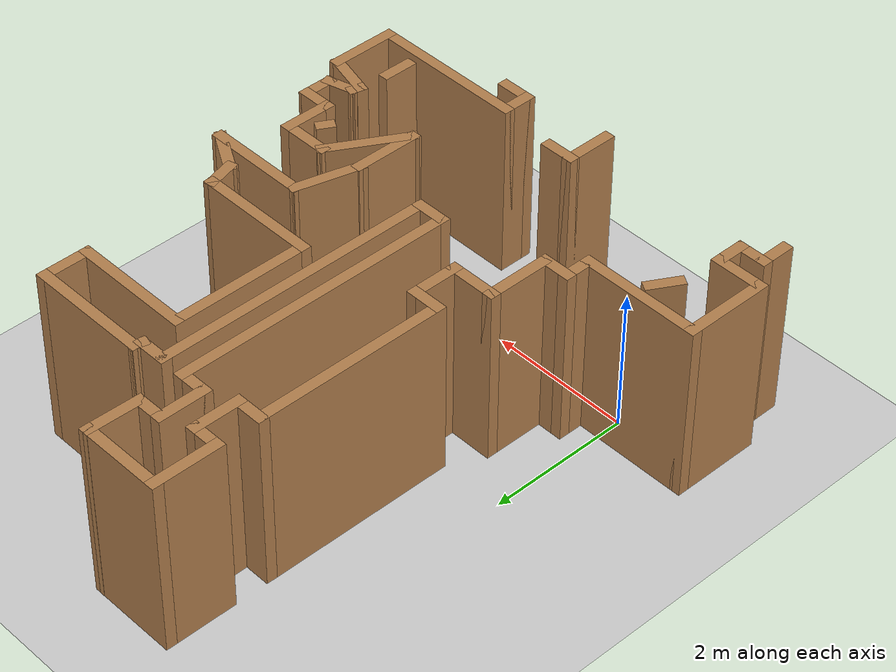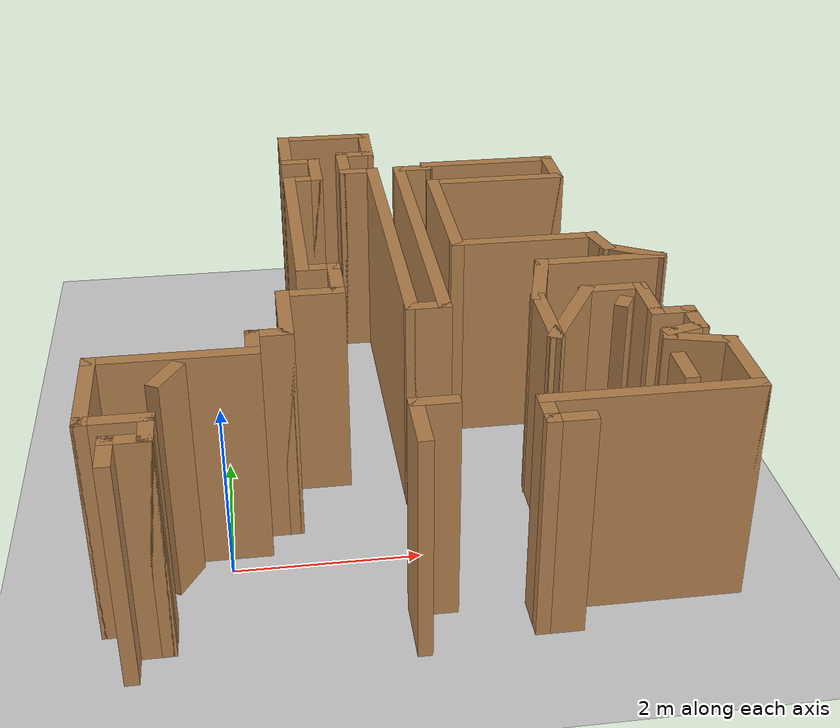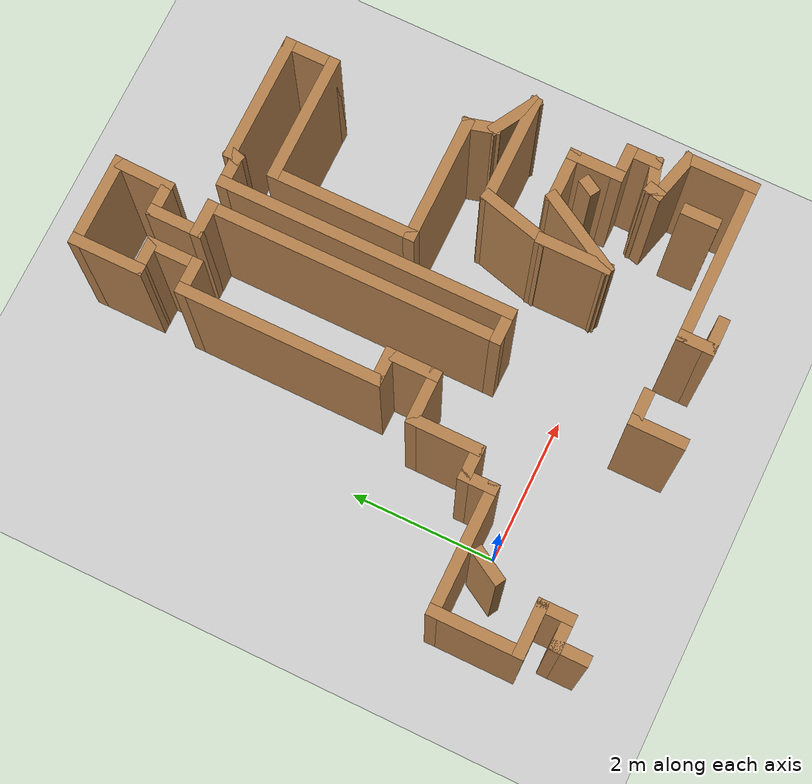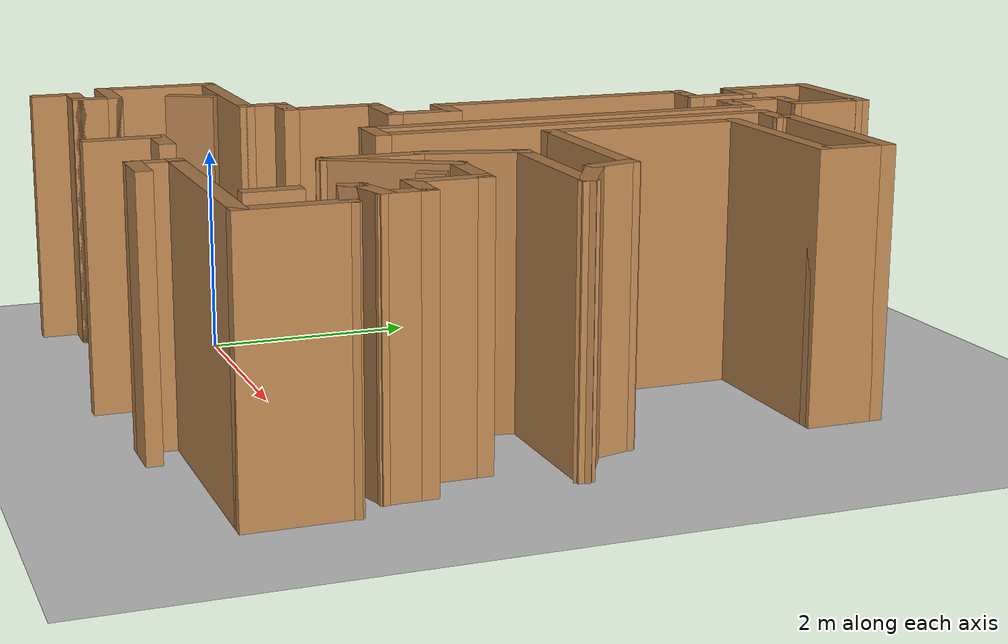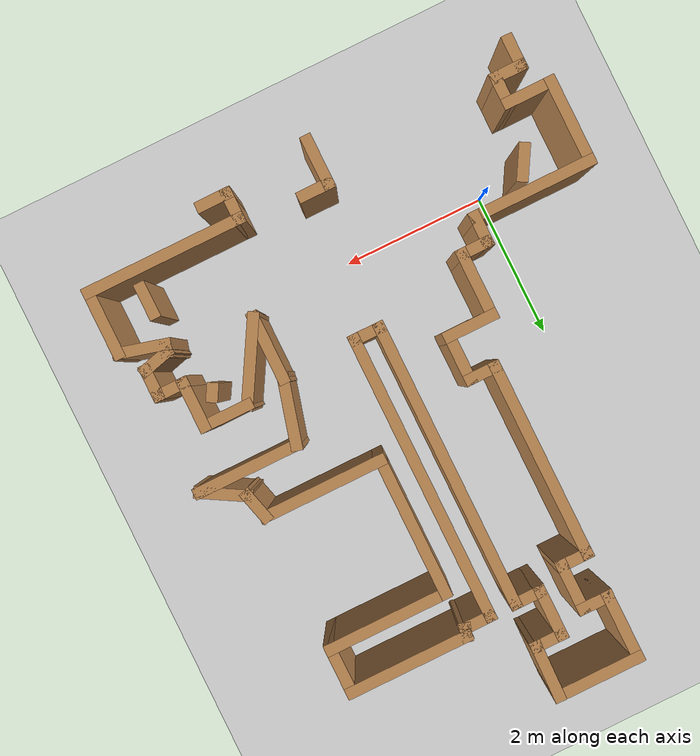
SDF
<sdf version="1.7">
 <world name="default">
  <model name="ground_plane">
   <static>1</static>
   <link name="link">
    <collision name="collision">
     <geometry><plane><normal>0 0 1</normal><size>100 100</size></plane></geometry>
     <surface>
      <contact><collide_bitmask>65535</collide_bitmask></contact>
      <friction><ode><mu>100</mu><mu2>50</mu2></ode></friction>
     </surface>
    </collision>
    <visual name="visual">
     <cast_shadows>0</cast_shadows>
     <geometry><plane><normal>0 0 1</normal><size>100 100</size></plane></geometry>
     <material>
      <script><uri>file://media/materials/scripts/gazebo.material</uri><name>Gazebo/Grey</name></script>
     </material>
    </visual>
   </link>
  </model>
  <model name="map_32">
   <pose>1.44168 -0.43788 0 0 -0 0</pose>
   <link name="Wall_10">
    <collision name="Wall_10_Collision">
     <geometry><box><size>0.75 0.15 2.5</size></box></geometry>
     <pose>0 0 1.25 0 -0 0</pose>
    </collision>
    <visual name="Wall_10_Visual">
     <pose>0 0 1.25 0 -0 0</pose>
     <geometry><box><size>0.75 0.15 2.5</size></box></geometry>
     <material>
      <script><uri>file://media/materials/scripts/gazebo.material</uri><name>Gazebo/Wood</name></script>
      <ambient>1 1 1 1</ambient>
     </material>
     <meta><layer>0</layer></meta>
    </visual>
    <pose>-0.432352 1.92407 0 0 -0 3.14159</pose>
   </link>
   <link name="Wall_103">
    <collision name="Wall_103_Collision">
     <geometry><box><size>1.75 0.15 2.5</size></box></geometry>
     <pose>0 0 1.25 0 -0 0</pose>
    </collision>
    <visual name="Wall_103_Visual">
     <pose>0 0 1.25 0 -0 0</pose>
     <geometry><box><size>1.75 0.15 2.5</size></box></geometry>
     <material>
      <script><uri>file://media/materials/scripts/gazebo.material</uri><name>Gazebo/Wood</name></script>
      <ambient>1 1 1 1</ambient>
     </material>
     <meta><layer>0</layer></meta>
    </visual>
    <pose>2.12655 5.39066 0 0 -0 3.14159</pose>
   </link>
   <link name="Wall_104">
    <collision name="Wall_104_Collision">
     <geometry><box><size>0.25 0.15 2.5</size></box></geometry>
     <pose>0 0 1.25 0 -0 0</pose>
    </collision>
    <visual name="Wall_104_Visual">
     <pose>0 0 1.25 0 -0 0</pose>
     <geometry><box><size>0.25 0.15 2.5</size></box></geometry>
     <material>
      <script><uri>file://media/materials/scripts/gazebo.material</uri><name>Gazebo/Wood</name></script>
      <ambient>1 1 1 1</ambient>
     </material>
     <meta><layer>0</layer></meta>
    </visual>
    <pose>1.31361 5.34236 0 0 -0 -1.8326</pose>
   </link>
   <link name="Wall_105">
    <collision name="Wall_105_Collision">
     <geometry><box><size>0.5 0.15 2.5</size></box></geometry>
     <pose>0 0 1.25 0 -0 0</pose>
    </collision>
    <visual name="Wall_105_Visual">
     <pose>0 0 1.25 0 -0 0</pose>
     <geometry><box><size>0.5 0.15 2.5</size></box></geometry>
     <material>
      <script><uri>file://media/materials/scripts/gazebo.material</uri><name>Gazebo/Wood</name></script>
      <ambient>1 1 1 1</ambient>
     </material>
     <meta><layer>0</layer></meta>
    </visual>
    <pose>1.12566 5.29407 0 0 -0 3.14159</pose>
   </link>
   <link name="Wall_106">
    <collision name="Wall_106_Collision">
     <geometry><box><size>4 0.15 2.5</size></box></geometry>
     <pose>0 0 1.25 0 -0 0</pose>
    </collision>
    <visual name="Wall_106_Visual">
     <pose>0 0 1.25 0 -0 0</pose>
     <geometry><box><size>4 0.15 2.5</size></box></geometry>
     <material>
      <script><uri>file://media/materials/scripts/gazebo.material</uri><name>Gazebo/Wood</name></script>
      <ambient>1 1 1 1</ambient>
     </material>
     <meta><layer>0</layer></meta>
    </visual>
    <pose>0.950665 3.36907 0 0 -0 -1.5708</pose>
   </link>
   <link name="Wall_107">
    <collision name="Wall_107_Collision">
     <geometry><box><size>0.5 0.15 2.5</size></box></geometry>
     <pose>0 0 1.25 0 -0 0</pose>
    </collision>
    <visual name="Wall_107_Visual">
     <pose>0 0 1.25 0 -0 0</pose>
     <geometry><box><size>0.5 0.15 2.5</size></box></geometry>
     <material>
      <script><uri>file://media/materials/scripts/gazebo.material</uri><name>Gazebo/Wood</name></script>
      <ambient>1 1 1 1</ambient>
     </material>
     <meta><layer>0</layer></meta>
    </visual>
    <pose>0.775665 1.44407 0 0 -0 3.14159</pose>
   </link>
   <link name="Wall_108">
    <collision name="Wall_108_Collision">
     <geometry><box><size>4 0.15 2.5</size></box></geometry>
     <pose>0 0 1.25 0 -0 0</pose>
    </collision>
    <visual name="Wall_108_Visual">
     <pose>0 0 1.25 0 -0 0</pose>
     <geometry><box><size>4 0.15 2.5</size></box></geometry>
     <material>
      <script><uri>file://media/materials/scripts/gazebo.material</uri><name>Gazebo/Wood</name></script>
      <ambient>1 1 1 1</ambient>
     </material>
     <meta><layer>0</layer></meta>
    </visual>
    <pose>0.600665 3.36907 0 0 -0 1.5708</pose>
   </link>
   <link name="Wall_109">
    <collision name="Wall_109_Collision">
     <geometry><box><size>0.5 0.15 2.5</size></box></geometry>
     <pose>0 0 1.25 0 -0 0</pose>
    </collision>
    <visual name="Wall_109_Visual">
     <pose>0 0 1.25 0 -0 0</pose>
     <geometry><box><size>0.5 0.15 2.5</size></box></geometry>
     <material>
      <script><uri>file://media/materials/scripts/gazebo.material</uri><name>Gazebo/Wood</name></script>
      <ambient>1 1 1 1</ambient>
     </material>
     <meta><layer>0</layer></meta>
    </visual>
    <pose>0.425665 5.29407 0 0 -0 3.14159</pose>
   </link>
   <link name="Wall_11">
    <collision name="Wall_11_Collision">
     <geometry><box><size>1 0.15 2.5</size></box></geometry>
     <pose>0 0 1.25 0 -0 0</pose>
    </collision>
    <visual name="Wall_11_Visual">
     <pose>0 0 1.25 0 -0 0</pose>
     <geometry><box><size>1 0.15 2.5</size></box></geometry>
     <material>
      <script><uri>file://media/materials/scripts/gazebo.material</uri><name>Gazebo/Wood</name></script>
      <ambient>1 1 1 1</ambient>
     </material>
     <meta><layer>0</layer></meta>
    </visual>
    <pose>-0.732352 1.49907 0 0 -0 -1.5708</pose>
   </link>
   <link name="Wall_110">
    <collision name="Wall_110_Collision">
     <geometry><box><size>0.75 0.15 2.5</size></box></geometry>
     <pose>0 0 1.25 0 -0 0</pose>
    </collision>
    <visual name="Wall_110_Visual">
     <pose>0 0 1.25 0 -0 0</pose>
     <geometry><box><size>0.75 0.15 2.5</size></box></geometry>
     <material>
      <script><uri>file://media/materials/scripts/gazebo.material</uri><name>Gazebo/Wood</name></script>
      <ambient>1 1 1 1</ambient>
     </material>
     <meta><layer>0</layer></meta>
    </visual>
    <pose>0.250665 5.59407 0 0 -0 1.5708</pose>
   </link>
   <link name="Wall_111">
    <collision name="Wall_111_Collision">
     <geometry><box><size>0.5 0.15 2.5</size></box></geometry>
     <pose>0 0 1.25 0 -0 0</pose>
    </collision>
    <visual name="Wall_111_Visual">
     <pose>0 0 1.25 0 -0 0</pose>
     <geometry><box><size>0.5 0.15 2.5</size></box></geometry>
     <material>
      <script><uri>file://media/materials/scripts/gazebo.material</uri><name>Gazebo/Wood</name></script>
      <ambient>1 1 1 1</ambient>
     </material>
     <meta><layer>0</layer></meta>
    </visual>
    <pose>0.425665 5.89407 0 0 -0 0</pose>
   </link>
   <link name="Wall_112">
    <collision name="Wall_112_Collision">
     <geometry><box><size>0.830221 0.15 2.5</size></box></geometry>
     <pose>0 0 1.25 0 -0 0</pose>
    </collision>
    <visual name="Wall_112_Visual">
     <pose>0 0 1.25 0 -0 0</pose>
     <geometry><box><size>0.830221 0.15 2.5</size></box></geometry>
     <material>
      <script><uri>file://media/materials/scripts/gazebo.material</uri><name>Gazebo/Wood</name></script>
      <ambient>1 1 1 1</ambient>
     </material>
     <meta><layer>0</layer></meta>
    </visual>
    <pose>0.609156 6.23407 0 0 -0 1.54583</pose>
   </link>
   <link name="Wall_116">
    <collision name="Wall_116_Collision">
     <geometry><box><size>0.5 0.15 2.5</size></box></geometry>
     <pose>0 0 1.25 0 -0 0</pose>
    </collision>
    <visual name="Wall_116_Visual">
     <pose>0 0 1.25 0 -0 0</pose>
     <geometry><box><size>0.5 0.15 2.5</size></box></geometry>
     <material>
      <script><uri>file://media/materials/scripts/gazebo.material</uri><name>Gazebo/Wood</name></script>
      <ambient>1 1 1 1</ambient>
     </material>
     <meta><layer>0</layer></meta>
    </visual>
    <pose>3.06584 -0.141038 0 0 -0 1.5708</pose>
   </link>
   <link name="Wall_119">
    <collision name="Wall_119_Collision">
     <geometry><box><size>0.25 0.15 2.5</size></box></geometry>
     <pose>0 0 1.25 0 -0 0</pose>
    </collision>
    <visual name="Wall_119_Visual">
     <pose>0 0 1.25 0 -0 0</pose>
     <geometry><box><size>0.25 0.15 2.5</size></box></geometry>
     <material>
      <script><uri>file://media/materials/scripts/gazebo.material</uri><name>Gazebo/Wood</name></script>
      <ambient>1 1 1 1</ambient>
     </material>
     <meta><layer>0</layer></meta>
    </visual>
    <pose>2.83971 1.24975 0 0 -0 -2.0944</pose>
   </link>
   <link name="Wall_121">
    <collision name="Wall_121_Collision">
     <geometry><box><size>0.5 0.15 2.5</size></box></geometry>
     <pose>0 0 1.25 0 -0 0</pose>
    </collision>
    <visual name="Wall_121_Visual">
     <pose>0 0 1.25 0 -0 0</pose>
     <geometry><box><size>0.5 0.15 2.5</size></box></geometry>
     <material>
      <script><uri>file://media/materials/scripts/gazebo.material</uri><name>Gazebo/Wood</name></script>
      <ambient>1 1 1 1</ambient>
     </material>
     <meta><layer>0</layer></meta>
    </visual>
    <pose>-1.92937 0.377178 0 0 -0 -2.0944</pose>
   </link>
   <link name="Wall_14">
    <collision name="Wall_14_Collision">
     <geometry><box><size>0.5 0.15 2.5</size></box></geometry>
     <pose>0 0 1.25 0 -0 0</pose>
    </collision>
    <visual name="Wall_14_Visual">
     <pose>0 0 1.25 0 -0 0</pose>
     <geometry><box><size>0.5 0.15 2.5</size></box></geometry>
     <material>
      <script><uri>file://media/materials/scripts/gazebo.material</uri><name>Gazebo/Wood</name></script>
      <ambient>1 1 1 1</ambient>
     </material>
     <meta><layer>0</layer></meta>
    </visual>
    <pose>-0.907352 1.07407 0 0 -0 3.14159</pose>
   </link>
   <link name="Wall_15">
    <collision name="Wall_15_Collision">
     <geometry><box><size>0.5 0.15 2.5</size></box></geometry>
     <pose>0 0 1.25 0 -0 0</pose>
    </collision>
    <visual name="Wall_15_Visual">
     <pose>0 0 1.25 0 -0 0</pose>
     <geometry><box><size>0.5 0.15 2.5</size></box></geometry>
     <material>
      <script><uri>file://media/materials/scripts/gazebo.material</uri><name>Gazebo/Wood</name></script>
      <ambient>1 1 1 1</ambient>
     </material>
     <meta><layer>0</layer></meta>
    </visual>
    <pose>-1.08235 0.899075 0 0 -0 -1.5708</pose>
   </link>
   <link name="Wall_18">
    <collision name="Wall_18_Collision">
     <geometry><box><size>1.75 0.15 2.5</size></box></geometry>
     <pose>0 0 1.25 0 -0 0</pose>
    </collision>
    <visual name="Wall_18_Visual">
     <pose>0 0 1.25 0 -0 0</pose>
     <geometry><box><size>1.75 0.15 2.5</size></box></geometry>
     <material>
      <script><uri>file://media/materials/scripts/gazebo.material</uri><name>Gazebo/Wood</name></script>
      <ambient>1 1 1 1</ambient>
     </material>
     <meta><layer>0</layer></meta>
    </visual>
    <pose>-1.88235 0.724075 0 0 -0 3.14159</pose>
   </link>
   <link name="Wall_19">
    <collision name="Wall_19_Collision">
     <geometry><box><size>1.25 0.15 2.5</size></box></geometry>
     <pose>0 0 1.25 0 -0 0</pose>
    </collision>
    <visual name="Wall_19_Visual">
     <pose>0 0 1.25 0 -0 0</pose>
     <geometry><box><size>1.25 0.15 2.5</size></box></geometry>
     <material>
      <script><uri>file://media/materials/scripts/gazebo.material</uri><name>Gazebo/Wood</name></script>
      <ambient>1 1 1 1</ambient>
     </material>
     <meta><layer>0</layer></meta>
    </visual>
    <pose>-2.68235 0.174075 0 0 -0 -1.5708</pose>
   </link>
   <link name="Wall_2">
    <collision name="Wall_2_Collision">
     <geometry><box><size>1.25 0.15 2.5</size></box></geometry>
     <pose>0 0 1.25 0 -0 0</pose>
    </collision>
    <visual name="Wall_2_Visual">
     <pose>0 0 1.25 0 -0 0</pose>
     <geometry><box><size>1.25 0.15 2.5</size></box></geometry>
     <material>
      <script><uri>file://media/materials/scripts/gazebo.material</uri><name>Gazebo/Wood</name></script>
      <ambient>1 1 1 1</ambient>
     </material>
     <meta><layer>0</layer></meta>
    </visual>
    <pose>0.067648 6.57408 0 0 -0 3.14159</pose>
   </link>
   <link name="Wall_20">
    <collision name="Wall_20_Collision">
     <geometry><box><size>0.75 0.15 2.5</size></box></geometry>
     <pose>0 0 1.25 0 -0 0</pose>
    </collision>
    <visual name="Wall_20_Visual">
     <pose>0 0 1.25 0 -0 0</pose>
     <geometry><box><size>0.75 0.15 2.5</size></box></geometry>
     <material>
      <script><uri>file://media/materials/scripts/gazebo.material</uri><name>Gazebo/Wood</name></script>
      <ambient>1 1 1 1</ambient>
     </material>
     <meta><layer>0</layer></meta>
    </visual>
    <pose>-2.38235 -0.375925 0 0 -0 0</pose>
   </link>
   <link name="Wall_21">
    <collision name="Wall_21_Collision">
     <geometry><box><size>0.5 0.15 2.5</size></box></geometry>
     <pose>0 0 1.25 0 -0 0</pose>
    </collision>
    <visual name="Wall_21_Visual">
     <pose>0 0 1.25 0 -0 0</pose>
     <geometry><box><size>0.5 0.15 2.5</size></box></geometry>
     <material>
      <script><uri>file://media/materials/scripts/gazebo.material</uri><name>Gazebo/Wood</name></script>
      <ambient>1 1 1 1</ambient>
     </material>
     <meta><layer>0</layer></meta>
    </visual>
    <pose>-2.08235 -0.550925 0 0 -0 -1.5708</pose>
   </link>
   <link name="Wall_22">
    <collision name="Wall_22_Collision">
     <geometry><box><size>0.5 0.15 2.5</size></box></geometry>
     <pose>0 0 1.25 0 -0 0</pose>
    </collision>
    <visual name="Wall_22_Visual">
     <pose>0 0 1.25 0 -0 0</pose>
     <geometry><box><size>0.5 0.15 2.5</size></box></geometry>
     <material>
      <script><uri>file://media/materials/scripts/gazebo.material</uri><name>Gazebo/Wood</name></script>
      <ambient>1 1 1 1</ambient>
     </material>
     <meta><layer>0</layer></meta>
    </visual>
    <pose>-2.25735 -0.725925 0 0 -0 3.14159</pose>
   </link>
   <link name="Wall_23">
    <collision name="Wall_23_Collision">
     <geometry><box><size>0.5 0.15 2.5</size></box></geometry>
     <pose>0 0 1.25 0 -0 0</pose>
    </collision>
    <visual name="Wall_23_Visual">
     <pose>0 0 1.25 0 -0 0</pose>
     <geometry><box><size>0.5 0.15 2.5</size></box></geometry>
     <material>
      <script><uri>file://media/materials/scripts/gazebo.material</uri><name>Gazebo/Wood</name></script>
      <ambient>1 1 1 1</ambient>
     </material>
     <meta><layer>0</layer></meta>
    </visual>
    <pose>-2.43235 -0.900925 0 0 -0 -1.5708</pose>
   </link>
   <link name="Wall_3">
    <collision name="Wall_3_Collision">
     <geometry><box><size>1 0.15 2.5</size></box></geometry>
     <pose>0 0 1.25 0 -0 0</pose>
    </collision>
    <visual name="Wall_3_Visual">
     <pose>0 0 1.25 0 -0 0</pose>
     <geometry><box><size>1 0.15 2.5</size></box></geometry>
     <material>
      <script><uri>file://media/materials/scripts/gazebo.material</uri><name>Gazebo/Wood</name></script>
      <ambient>1 1 1 1</ambient>
     </material>
     <meta><layer>0</layer></meta>
    </visual>
    <pose>-0.482352 6.14908 0 0 -0 -1.5708</pose>
   </link>
   <link name="Wall_4">
    <collision name="Wall_4_Collision">
     <geometry><box><size>0.5 0.15 2.5</size></box></geometry>
     <pose>0 0 1.25 0 -0 0</pose>
    </collision>
    <visual name="Wall_4_Visual">
     <pose>0 0 1.25 0 -0 0</pose>
     <geometry><box><size>0.5 0.15 2.5</size></box></geometry>
     <material>
      <script><uri>file://media/materials/scripts/gazebo.material</uri><name>Gazebo/Wood</name></script>
      <ambient>1 1 1 1</ambient>
     </material>
     <meta><layer>0</layer></meta>
    </visual>
    <pose>-0.307352 5.72408 0 0 -0 0</pose>
   </link>
   <link name="Wall_5">
    <collision name="Wall_5_Collision">
     <geometry><box><size>0.75 0.15 2.5</size></box></geometry>
     <pose>0 0 1.25 0 -0 0</pose>
    </collision>
    <visual name="Wall_5_Visual">
     <pose>0 0 1.25 0 -0 0</pose>
     <geometry><box><size>0.75 0.15 2.5</size></box></geometry>
     <material>
      <script><uri>file://media/materials/scripts/gazebo.material</uri><name>Gazebo/Wood</name></script>
      <ambient>1 1 1 1</ambient>
     </material>
     <meta><layer>0</layer></meta>
    </visual>
    <pose>-0.132352 5.42408 0 0 -0 -1.5708</pose>
   </link>
   <link name="Wall_6">
    <collision name="Wall_6_Collision">
     <geometry><box><size>0.5 0.15 2.5</size></box></geometry>
     <pose>0 0 1.25 0 -0 0</pose>
    </collision>
    <visual name="Wall_6_Visual">
     <pose>0 0 1.25 0 -0 0</pose>
     <geometry><box><size>0.5 0.15 2.5</size></box></geometry>
     <material>
      <script><uri>file://media/materials/scripts/gazebo.material</uri><name>Gazebo/Wood</name></script>
      <ambient>1 1 1 1</ambient>
     </material>
     <meta><layer>0</layer></meta>
    </visual>
    <pose>-0.307352 5.12408 0 0 -0 3.14159</pose>
   </link>
   <link name="Wall_61">
    <collision name="Wall_61_Collision">
     <geometry><box><size>0.75 0.15 2.5</size></box></geometry>
     <pose>0 0 1.25 0 -0 0</pose>
    </collision>
    <visual name="Wall_61_Visual">
     <pose>0 0 1.25 0 -0 0</pose>
     <geometry><box><size>0.75 0.15 2.5</size></box></geometry>
     <material>
      <script><uri>file://media/materials/scripts/gazebo.material</uri><name>Gazebo/Wood</name></script>
      <ambient>1 1 1 1</ambient>
     </material>
     <meta><layer>0</layer></meta>
    </visual>
    <pose>0.382352 -0.758295 0 0 -0 1.5708</pose>
   </link>
   <link name="Wall_62">
    <collision name="Wall_62_Collision">
     <geometry><box><size>0.5 0.15 2.5</size></box></geometry>
     <pose>0 0 1.25 0 -0 0</pose>
    </collision>
    <visual name="Wall_62_Visual">
     <pose>0 0 1.25 0 -0 0</pose>
     <geometry><box><size>0.5 0.15 2.5</size></box></geometry>
     <material>
      <script><uri>file://media/materials/scripts/gazebo.material</uri><name>Gazebo/Wood</name></script>
      <ambient>1 1 1 1</ambient>
     </material>
     <meta><layer>0</layer></meta>
    </visual>
    <pose>0.557352 -0.458295 0 0 -0 0</pose>
   </link>
   <link name="Wall_7">
    <collision name="Wall_7_Collision">
     <geometry><box><size>2.75 0.15 2.5</size></box></geometry>
     <pose>0 0 1.25 0 -0 0</pose>
    </collision>
    <visual name="Wall_7_Visual">
     <pose>0 0 1.25 0 -0 0</pose>
     <geometry><box><size>2.75 0.15 2.5</size></box></geometry>
     <material>
      <script><uri>file://media/materials/scripts/gazebo.material</uri><name>Gazebo/Wood</name></script>
      <ambient>1 1 1 1</ambient>
     </material>
     <meta><layer>0</layer></meta>
    </visual>
    <pose>-0.482352 3.82408 0 0 -0 -1.5708</pose>
   </link>
   <link name="Wall_78">
    <collision name="Wall_78_Collision">
     <geometry><box><size>0.5 0.15 2.5</size></box></geometry>
     <pose>0 0 1.25 0 -0 0</pose>
    </collision>
    <visual name="Wall_78_Visual">
     <pose>0 0 1.25 0 -0 0</pose>
     <geometry><box><size>0.5 0.15 2.5</size></box></geometry>
     <material>
      <script><uri>file://media/materials/scripts/gazebo.material</uri><name>Gazebo/Wood</name></script>
      <ambient>1 1 1 1</ambient>
     </material>
     <meta><layer>0</layer></meta>
    </visual>
    <pose>1.75735 -0.908295 0 0 -0 3.14159</pose>
   </link>
   <link name="Wall_79">
    <collision name="Wall_79_Collision">
     <geometry><box><size>0.5 0.15 2.5</size></box></geometry>
     <pose>0 0 1.25 0 -0 0</pose>
    </collision>
    <visual name="Wall_79_Visual">
     <pose>0 0 1.25 0 -0 0</pose>
     <geometry><box><size>0.5 0.15 2.5</size></box></geometry>
     <material>
      <script><uri>file://media/materials/scripts/gazebo.material</uri><name>Gazebo/Wood</name></script>
      <ambient>1 1 1 1</ambient>
     </material>
     <meta><layer>0</layer></meta>
    </visual>
    <pose>1.58235 -0.733295 0 0 -0 1.5708</pose>
   </link>
   <link name="Wall_8">
    <collision name="Wall_8_Collision">
     <geometry><box><size>0.5 0.15 2.5</size></box></geometry>
     <pose>0 0 1.25 0 -0 0</pose>
    </collision>
    <visual name="Wall_8_Visual">
     <pose>0 0 1.25 0 -0 0</pose>
     <geometry><box><size>0.5 0.15 2.5</size></box></geometry>
     <material>
      <script><uri>file://media/materials/scripts/gazebo.material</uri><name>Gazebo/Wood</name></script>
      <ambient>1 1 1 1</ambient>
     </material>
     <meta><layer>0</layer></meta>
    </visual>
    <pose>-0.307352 2.52407 0 0 -0 0</pose>
   </link>
   <link name="Wall_80">
    <collision name="Wall_80_Collision">
     <geometry><box><size>2.25 0.15 2.5</size></box></geometry>
     <pose>0 0 1.25 0 -0 0</pose>
    </collision>
    <visual name="Wall_80_Visual">
     <pose>0 0 1.25 0 -0 0</pose>
     <geometry><box><size>2.25 0.15 2.5</size></box></geometry>
     <material>
      <script><uri>file://media/materials/scripts/gazebo.material</uri><name>Gazebo/Wood</name></script>
      <ambient>1 1 1 1</ambient>
     </material>
     <meta><layer>0</layer></meta>
    </visual>
    <pose>2.63235 -0.558295 0 0 -0 0</pose>
   </link>
   <link name="Wall_81">
    <collision name="Wall_81_Collision">
     <geometry><box><size>1 0.15 2.5</size></box></geometry>
     <pose>0 0 1.25 0 -0 0</pose>
    </collision>
    <visual name="Wall_81_Visual">
     <pose>0 0 1.25 0 -0 0</pose>
     <geometry><box><size>1 0.15 2.5</size></box></geometry>
     <material>
      <script><uri>file://media/materials/scripts/gazebo.material</uri><name>Gazebo/Wood</name></script>
      <ambient>1 1 1 1</ambient>
     </material>
     <meta><layer>0</layer></meta>
    </visual>
    <pose>3.68235 -0.133295 0 0 -0 1.5708</pose>
   </link>
   <link name="Wall_82">
    <collision name="Wall_82_Collision">
     <geometry><box><size>0.75 0.15 2.5</size></box></geometry>
     <pose>0 0 1.25 0 -0 0</pose>
    </collision>
    <visual name="Wall_82_Visual">
     <pose>0 0 1.25 0 -0 0</pose>
     <geometry><box><size>0.75 0.15 2.5</size></box></geometry>
     <material>
      <script><uri>file://media/materials/scripts/gazebo.material</uri><name>Gazebo/Wood</name></script>
      <ambient>1 1 1 1</ambient>
     </material>
     <meta><layer>0</layer></meta>
    </visual>
    <pose>3.39257 0.36935 0 0 -0 2.87979</pose>
   </link>
   <link name="Wall_83">
    <collision name="Wall_83_Collision">
     <geometry><box><size>0.25 0.15 2.5</size></box></geometry>
     <pose>0 0 1.25 0 -0 0</pose>
    </collision>
    <visual name="Wall_83_Visual">
     <pose>0 0 1.25 0 -0 0</pose>
     <geometry><box><size>0.25 0.15 2.5</size></box></geometry>
     <material>
      <script><uri>file://media/materials/scripts/gazebo.material</uri><name>Gazebo/Wood</name></script>
      <ambient>1 1 1 1</ambient>
     </material>
     <meta><layer>0</layer></meta>
    </visual>
    <pose>3.11574 0.495292 0 0 -0 1.309</pose>
   </link>
   <link name="Wall_84">
    <collision name="Wall_84_Collision">
     <geometry><box><size>0.5 0.15 2.5</size></box></geometry>
     <pose>0 0 1.25 0 -0 0</pose>
    </collision>
    <visual name="Wall_84_Visual">
     <pose>0 0 1.25 0 -0 0</pose>
     <geometry><box><size>0.5 0.15 2.5</size></box></geometry>
     <material>
      <script><uri>file://media/materials/scripts/gazebo.material</uri><name>Gazebo/Wood</name></script>
      <ambient>1 1 1 1</ambient>
     </material>
     <meta><layer>0</layer></meta>
    </visual>
    <pose>3.29772 0.588882 0 0 -0 0.261799</pose>
   </link>
   <link name="Wall_85">
    <collision name="Wall_85_Collision">
     <geometry><box><size>0.5 0.15 2.5</size></box></geometry>
     <pose>0 0 1.25 0 -0 0</pose>
    </collision>
    <visual name="Wall_85_Visual">
     <pose>0 0 1.25 0 -0 0</pose>
     <geometry><box><size>0.5 0.15 2.5</size></box></geometry>
     <material>
      <script><uri>file://media/materials/scripts/gazebo.material</uri><name>Gazebo/Wood</name></script>
      <ambient>1 1 1 1</ambient>
     </material>
     <meta><layer>0</layer></meta>
    </visual>
    <pose>3.46675 0.809175 0 0 -0 1.5708</pose>
   </link>
   <link name="Wall_86">
    <collision name="Wall_86_Collision">
     <geometry><box><size>0.5 0.15 2.5</size></box></geometry>
     <pose>0 0 1.25 0 -0 0</pose>
    </collision>
    <visual name="Wall_86_Visual">
     <pose>0 0 1.25 0 -0 0</pose>
     <geometry><box><size>0.5 0.15 2.5</size></box></geometry>
     <material>
      <script><uri>file://media/materials/scripts/gazebo.material</uri><name>Gazebo/Wood</name></script>
      <ambient>1 1 1 1</ambient>
     </material>
     <meta><layer>0</layer></meta>
    </visual>
    <pose>3.29175 0.984175 0 0 -0 3.14159</pose>
   </link>
   <link name="Wall_87">
    <collision name="Wall_87_Collision">
     <geometry><box><size>0.75 0.15 2.5</size></box></geometry>
     <pose>0 0 1.25 0 -0 0</pose>
    </collision>
    <visual name="Wall_87_Visual">
     <pose>0 0 1.25 0 -0 0</pose>
     <geometry><box><size>0.75 0.15 2.5</size></box></geometry>
     <material>
      <script><uri>file://media/materials/scripts/gazebo.material</uri><name>Gazebo/Wood</name></script>
      <ambient>1 1 1 1</ambient>
     </material>
     <meta><layer>0</layer></meta>
    </visual>
    <pose>3.11675 1.28418 0 0 -0 1.5708</pose>
   </link>
   <link name="Wall_88">
    <collision name="Wall_88_Collision">
     <geometry><box><size>0.75 0.15 2.5</size></box></geometry>
     <pose>0 0 1.25 0 -0 0</pose>
    </collision>
    <visual name="Wall_88_Visual">
     <pose>0 0 1.25 0 -0 0</pose>
     <geometry><box><size>0.75 0.15 2.5</size></box></geometry>
     <material>
      <script><uri>file://media/materials/scripts/gazebo.material</uri><name>Gazebo/Wood</name></script>
      <ambient>1 1 1 1</ambient>
     </material>
     <meta><layer>0</layer></meta>
    </visual>
    <pose>2.81675 1.58418 0 0 -0 3.14159</pose>
   </link>
   <link name="Wall_89">
    <collision name="Wall_89_Collision">
     <geometry><box><size>1.25 0.15 2.5</size></box></geometry>
     <pose>0 0 1.25 0 -0 0</pose>
    </collision>
    <visual name="Wall_89_Visual">
     <pose>0 0 1.25 0 -0 0</pose>
     <geometry><box><size>1.25 0.15 2.5</size></box></geometry>
     <material>
      <script><uri>file://media/materials/scripts/gazebo.material</uri><name>Gazebo/Wood</name></script>
      <ambient>1 1 1 1</ambient>
     </material>
     <meta><layer>0</layer></meta>
    </visual>
    <pose>2.24175 1.10786 0 0 -0 -2.0944</pose>
   </link>
   <link name="Wall_9">
    <collision name="Wall_9_Collision">
     <geometry><box><size>0.75 0.15 2.5</size></box></geometry>
     <pose>0 0 1.25 0 -0 0</pose>
    </collision>
    <visual name="Wall_9_Visual">
     <pose>0 0 1.25 0 -0 0</pose>
     <geometry><box><size>0.75 0.15 2.5</size></box></geometry>
     <material>
      <script><uri>file://media/materials/scripts/gazebo.material</uri><name>Gazebo/Wood</name></script>
      <ambient>1 1 1 1</ambient>
     </material>
     <meta><layer>0</layer></meta>
    </visual>
    <pose>-0.132352 2.22408 0 0 -0 -1.5708</pose>
   </link>
   <link name="Wall_90">
    <collision name="Wall_90_Collision">
     <geometry><box><size>1 0.15 2.5</size></box></geometry>
     <pose>0 0 1.25 0 -0 0</pose>
    </collision>
    <visual name="Wall_90_Visual">
     <pose>0 0 1.25 0 -0 0</pose>
     <geometry><box><size>1 0.15 2.5</size></box></geometry>
     <material>
      <script><uri>file://media/materials/scripts/gazebo.material</uri><name>Gazebo/Wood</name></script>
      <ambient>1 1 1 1</ambient>
     </material>
     <meta><layer>0</layer></meta>
    </visual>
    <pose>1.96675 1.05655 0 0 -0 1.5708</pose>
   </link>
   <link name="Wall_91">
    <collision name="Wall_91_Collision">
     <geometry><box><size>1 0.15 2.5</size></box></geometry>
     <pose>0 0 1.25 0 -0 0</pose>
    </collision>
    <visual name="Wall_91_Visual">
     <pose>0 0 1.25 0 -0 0</pose>
     <geometry><box><size>1 0.15 2.5</size></box></geometry>
     <material>
      <script><uri>file://media/materials/scripts/gazebo.material</uri><name>Gazebo/Wood</name></script>
      <ambient>1 1 1 1</ambient>
     </material>
     <meta><layer>0</layer></meta>
    </visual>
    <pose>2.07675 1.89207 0 0 -0 1.309</pose>
   </link>
   <link name="Wall_92">
    <collision name="Wall_92_Collision">
     <geometry><box><size>1.5 0.15 2.5</size></box></geometry>
     <pose>0 0 1.25 0 -0 0</pose>
    </collision>
    <visual name="Wall_92_Visual">
     <pose>0 0 1.25 0 -0 0</pose>
     <geometry><box><size>1.5 0.15 2.5</size></box></geometry>
     <material>
      <script><uri>file://media/materials/scripts/gazebo.material</uri><name>Gazebo/Wood</name></script>
      <ambient>1 1 1 1</ambient>
     </material>
     <meta><layer>0</layer></meta>
    </visual>
    <pose>2.86175 2.30259 0 0 -0 0</pose>
   </link>
   <link name="Wall_93">
    <collision name="Wall_93_Collision">
     <geometry><box><size>0.75 0.15 2.5</size></box></geometry>
     <pose>0 0 1.25 0 -0 0</pose>
    </collision>
    <visual name="Wall_93_Visual">
     <pose>0 0 1.25 0 -0 0</pose>
     <geometry><box><size>0.75 0.15 2.5</size></box></geometry>
     <material>
      <script><uri>file://media/materials/scripts/gazebo.material</uri><name>Gazebo/Wood</name></script>
      <ambient>1 1 1 1</ambient>
     </material>
     <meta><layer>0</layer></meta>
    </visual>
    <pose>3.27694 2.45258 0 0 -0 2.61799</pose>
   </link>
   <link name="Wall_94">
    <collision name="Wall_94_Collision">
     <geometry><box><size>0.5 0.15 2.5</size></box></geometry>
     <pose>0 0 1.25 0 -0 0</pose>
    </collision>
    <visual name="Wall_94_Visual">
     <pose>0 0 1.25 0 -0 0</pose>
     <geometry><box><size>0.5 0.15 2.5</size></box></geometry>
     <material>
      <script><uri>file://media/materials/scripts/gazebo.material</uri><name>Gazebo/Wood</name></script>
      <ambient>1 1 1 1</ambient>
     </material>
     <meta><layer>0</layer></meta>
    </visual>
    <pose>2.97184 2.77162 0 0 -0 1.8326</pose>
   </link>
   <link name="Wall_95">
    <collision name="Wall_95_Collision">
     <geometry><box><size>1.75 0.15 2.5</size></box></geometry>
     <pose>0 0 1.25 0 -0 0</pose>
    </collision>
    <visual name="Wall_95_Visual">
     <pose>0 0 1.25 0 -0 0</pose>
     <geometry><box><size>1.75 0.15 2.5</size></box></geometry>
     <material>
      <script><uri>file://media/materials/scripts/gazebo.material</uri><name>Gazebo/Wood</name></script>
      <ambient>1 1 1 1</ambient>
     </material>
     <meta><layer>0</layer></meta>
    </visual>
    <pose>2.12655 2.94066 0 0 -0 3.14159</pose>
   </link>
   <link name="Wall_96">
    <collision name="Wall_96_Collision">
     <geometry><box><size>2 0.15 2.5</size></box></geometry>
     <pose>0 0 1.25 0 -0 0</pose>
    </collision>
    <visual name="Wall_96_Visual">
     <pose>0 0 1.25 0 -0 0</pose>
     <geometry><box><size>2 0.15 2.5</size></box></geometry>
     <material>
      <script><uri>file://media/materials/scripts/gazebo.material</uri><name>Gazebo/Wood</name></script>
      <ambient>1 1 1 1</ambient>
     </material>
     <meta><layer>0</layer></meta>
    </visual>
    <pose>1.32655 3.86566 0 0 -0 1.5708</pose>
   </link>
   <link name="Wall_97">
    <collision name="Wall_97_Collision">
     <geometry><box><size>1.75 0.15 2.5</size></box></geometry>
     <pose>0 0 1.25 0 -0 0</pose>
    </collision>
    <visual name="Wall_97_Visual">
     <pose>0 0 1.25 0 -0 0</pose>
     <geometry><box><size>1.75 0.15 2.5</size></box></geometry>
     <material>
      <script><uri>file://media/materials/scripts/gazebo.material</uri><name>Gazebo/Wood</name></script>
      <ambient>1 1 1 1</ambient>
     </material>
     <meta><layer>0</layer></meta>
    </visual>
    <pose>2.12655 4.79066 0 0 -0 0</pose>
   </link>
   <link name="Wall_98">
    <collision name="Wall_98_Collision">
     <geometry><box><size>0.75 0.15 2.5</size></box></geometry>
     <pose>0 0 1.25 0 -0 0</pose>
    </collision>
    <visual name="Wall_98_Visual">
     <pose>0 0 1.25 0 -0 0</pose>
     <geometry><box><size>0.75 0.15 2.5</size></box></geometry>
     <material>
      <script><uri>file://media/materials/scripts/gazebo.material</uri><name>Gazebo/Wood</name></script>
      <ambient>1 1 1 1</ambient>
     </material>
     <meta><layer>0</layer></meta>
    </visual>
    <pose>2.92655 5.09066 0 0 -0 1.5708</pose>
   </link>
   <static>1</static>
  </model>
 </world>
</sdf>
